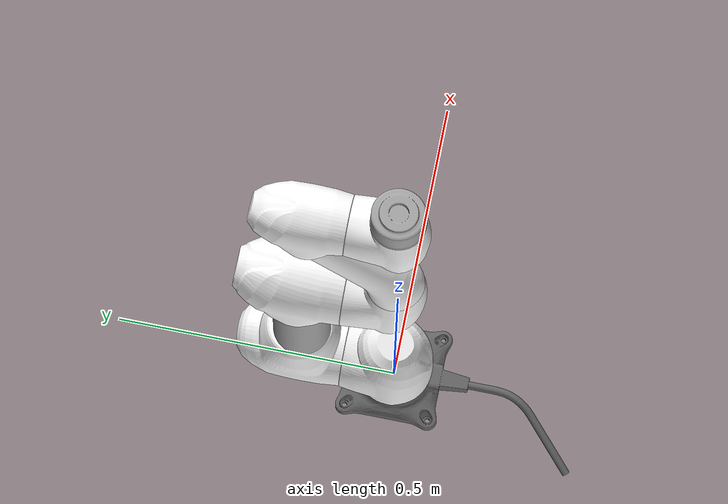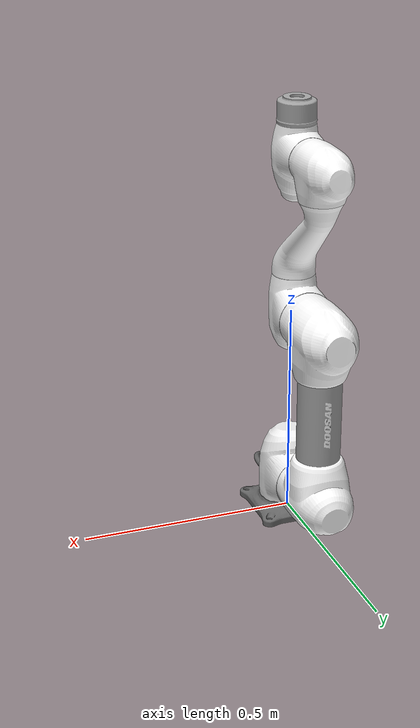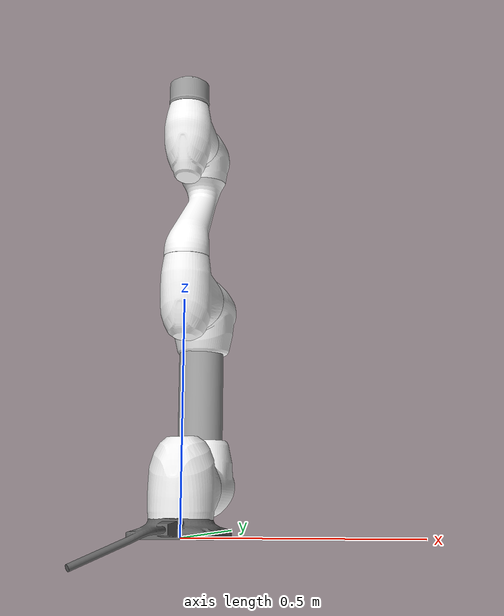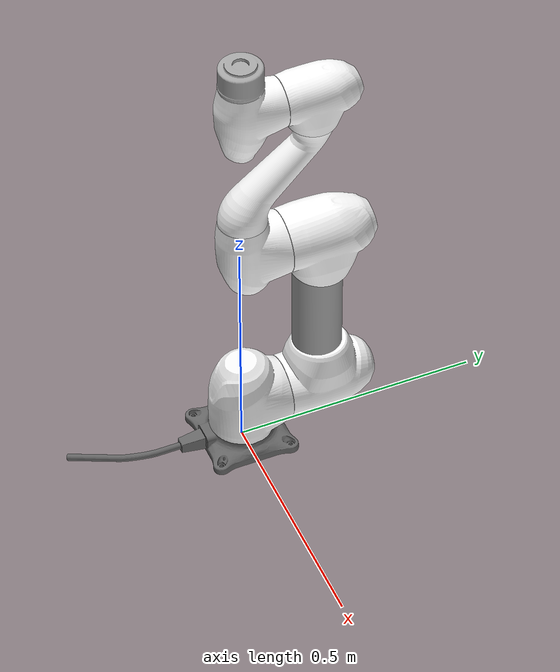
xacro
<?xml version="1.0"?>
<robot xmlns:xacro="http://www.ros.org/wiki/xacro" name="m0609" >

  <xacro:arg name="color"   default="white"/>
  <xacro:arg name="gripper" default="none"/>
  <xacro:arg name="namespace" default=""/>

  <xacro:property name="cr" value="$(arg color)"/>
  <xacro:property name="gr" value="$(arg gripper)"/>
  <xacro:if value="${cr == 'white'}">
     <xacro:include filename="$(find dsr_description2)/xacro/macro.m0609.white.xacro" />
  </xacro:if>
  <xacro:if value="${cr == 'blue'}">
     <xacro:include filename="$(find dsr_description2)/xacro/macro.m0609.blue.xacro" />
  </xacro:if>

  <xacro:m0609 namespace="$(arg namespace)"/>

  <link name="world" />

  <xacro:if value="${gr == 'robotiq_2f'}">
     <xacro:include filename="$(find dsr_description2)/xacro/robotiq_2f.urdf.xacro" />

  </xacro:if>

  <!-- World fixed joint-->
  <joint name="world_fixed" type="fixed">
    <origin xyz="0 0 0" rpy="0 0 0"/>
    <parent link="world"/>
    <child link="base_0"/>
  </joint>

</robot>

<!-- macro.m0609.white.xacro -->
<robot name="m0609" xmlns:xacro="http://www.ros.org/wiki/xacro">
	<xacro:include filename="$(find dsr_description2)/config/macro.gazebo.xacro" />
	<xacro:include filename="$(find dsr_description2)/config/macro.transmission.xacro" />
	<xacro:include filename="$(find dsr_description2)/config/macro.materials.xacro" />
	<xacro:macro name="m0609" params="namespace">
    <xacro:dsr_materials />
		<link name="base_0">
			<inertial>
				<mass value="3.722" />
				<origin xyz="-1.2e-05 -6e-05 0.050723" />
				<inertia ixx="0.011" ixy="-7.19e-06" ixz="-1.94e-06" iyy="0.011" iyz="4.9e-06" izz="0.014" />
			</inertial>
			<visual>
				<origin rpy="0 0 0" xyz="0 0 0" />
				<geometry>
					<mesh filename="package://dsr_description2/meshes/m0609_white/MF0609_0_0.dae" scale="0.001 0.001 0.001" />
				</geometry>
			</visual>
		</link>
		<!-- joint 1 -->
		<joint name="joint1" type="revolute">
			<parent link="base_0" />
			<child link="link1" />
			<origin rpy="0 0 0" xyz="0 0 0.1" />
			<axis xyz="0 0 1" />
			<limit effort="3460" lower="-6.283" upper="6.283" velocity="2.094" />
			<dynamics friction="0" />
		</joint>
		<link name="link1">
			<inertial>
				<mass value="7.446" />
				<origin xyz="7e-05 0.044281 0.143327" />
				<inertia ixx="0.039" ixy="2.1e-05" ixz="-3.61e-05" iyy="0.023" iyz="-0.003" izz="0.039" />
			</inertial>
            <collision>
                <geometry>
                    <cylinder radius="0.08" length="0.2"/>
                </geometry>
            </collision>
			<visual>
				<origin rpy="0 0 0" xyz="0 0 0" />
				<geometry>
					<mesh filename="package://dsr_description2/meshes/m0609_white/MF0609_1_0.dae" scale="0.001 0.001 0.001" />
				</geometry>
			</visual>
		</link>
		<!-- joint2 -->
		<joint name="joint2" type="revolute">
			<parent link="link1" />
			<child link="link2" />
			<origin rpy="0 -1.571 -1.571" xyz="0 0.0062 0" />
			<axis xyz="0 0 1" />
			<limit effort="3460" lower="-1.658" upper="1.658" velocity="2.094" />
			<dynamics friction="0" />
		</joint>
		<link name="link2">
			<inertial>
				<mass value="10.569" />
				<origin xyz="-1.6e-05 0.189372 0.418558" />
				<inertia ixx="0.820" ixy="1.19e-05" ixz="-0.000263" iyy="0.82" iyz="-0.008" izz="0.031" />
			</inertial>
            <collision>
                <origin rpy="0 -1.571 0" xyz="0.2 0 0.1525" />
                <geometry>
                    <cylinder radius="0.08" length="0.5"/>
                </geometry>
            </collision>
			<visual>
				<origin rpy="0 0 0" xyz="0 0 0" />
				<geometry>
					<mesh filename="package://dsr_description2/meshes/m0609_white/MF0609_2_0.dae" scale="0.001 0.001 0.001" />
				</geometry>
			</visual>
			<visual>
				<origin rpy="0 0 0" xyz="0 0 0" />
				<geometry>
					<mesh filename="package://dsr_description2/meshes/m0609_white/MF0609_2_1.dae" scale="0.001 0.001 0.001" />
				</geometry>
			</visual>
			<visual>
				<origin rpy="0 0 0" xyz="0 0 0" />
				<geometry>
					<mesh filename="package://dsr_description2/meshes/m0609_white/MF0609_2_2.dae" scale="0.001 0.001 0.001" />
				</geometry>
			</visual>
		</link>
		<!-- joint3 -->
		<joint name="joint3" type="revolute">
			<parent link="link2" />
			<child link="link3" />
			<origin rpy="0 0 1.571" xyz="0.411 0 0" />
			<axis xyz="0 0 1" />
			<limit effort="1630" lower="-2.356" upper="2.356" velocity="3.142" />
			<dynamics friction="0" />
		</joint>
		<link name="link3">
			<inertial>
				<mass value="3.614" />
				<origin xyz="6e-06 0.07917 0.781807" />
				<inertia ixx="0.012" ixy="-4.38e-06" ixz="-1.2e-06" iyy="0.008" iyz="0.002" izz="0.011" />
			</inertial>
			<visual>
				<origin rpy="0 0 0" xyz="0 0 0" />
				<geometry>
					<mesh filename="package://dsr_description2/meshes/m0609_white/MF0609_3_0.dae" scale="0.001 0.001 0.001" />
				</geometry>
			</visual>
		</link>
		<!-- joint4 -->
		<joint name="joint4" type="revolute">
			<parent link="link3" />
			<child link="link4" />
			<origin rpy="1.571 0 0" xyz="0 -0.368 0" />
			<axis xyz="0 0 1" />
			<limit effort="50" lower="-6.283" upper="6.283" velocity="3.927" />
			<dynamics friction="0" />
		</joint>
		<link name="link4">
			<inertial>
				<mass value="3.785" />
				<origin xyz="-2.1e-05 0.12337 1.148" />
				<inertia ixx="0.177" ixy="-2.34e-06" ixz="-4.92e-06" iyy="0.161" iyz="-0.05" izz="0.022" />
			</inertial>
            <collision>
                <origin rpy="-0.55 0 0" xyz="0 0.075 -0.16" />
                <geometry>
                    <cylinder radius="0.05" length="0.4"/>
                </geometry>
            </collision>
			<visual>
				<origin rpy="0 0 0" xyz="0 0 0" />
				<geometry>
					<mesh filename="package://dsr_description2/meshes/m0609_white/MF0609_4_0.dae" scale="0.001 0.001 0.001" />
				</geometry>
			</visual>
			<visual>
				<origin rpy="0 0 0" xyz="0 0 0" />
				<geometry>
					<mesh filename="package://dsr_description2/meshes/m0609_white/MF0609_4_1.dae" scale="0.001 0.001 0.001" />
				</geometry>
			</visual>
		</link>
		<!-- joint5 -->
		<joint name="joint5" type="revolute">
			<parent link="link4" />
			<child link="link5" />
			<origin rpy="-1.571 0 0" xyz="0 0 0" />
			<axis xyz="0 0 1" />
			<limit effort="50" lower="-2.356" upper="2.356" velocity="3.927" />
			<dynamics friction="0" />
		</joint>
		<link name="link5">
			<inertial>
				<mass value="2.598" />
				<origin xyz="-1.7e-05 0.06662 1.33103" />
				<inertia ixx="0.007" ixy="-4.93e-06" ixz="-5.57e-06" iyy="0.004" iyz="-6.64e-05" izz="0.007" />
			</inertial>
            <collision>
                <origin rpy="1.571 0 0" xyz="0 0 0" />
                <geometry>
                    <cylinder radius="0.06" length="0.15"/>
                </geometry>
            </collision>
			<visual>
				<origin rpy="0 0 0" xyz="0 0 0" />
				<geometry>
					<mesh filename="package://dsr_description2/meshes/m0609_white/MF0609_5_0.dae" scale="0.001 0.001 0.001" />
				</geometry>
			</visual>
		</link>
		<!-- joint6 -->
		<joint name="joint6" type="revolute">
			<parent link="link5" />
			<child link="link6" />
			<origin rpy="1.571 0 0" xyz="0 -0.121 0" />
			<axis xyz="0 0 1" />
			<limit effort="50" lower="-6.283" upper="6.283" velocity="3.927" />
			<dynamics friction="0" />
		</joint>
		<link name="link6">
			<inertial>
				<mass value="1.128" />
				<origin xyz="-0.000174 0.034708 1.40022" />
				<inertia ixx="0.001" ixy="-2.79e-06" ixz="5.78e-06" iyy="0.001" iyz="-6.67e-06" izz="0.001" />
			</inertial>
			<visual>
				<origin rpy="0 0 0" xyz="0 0 0" />
				<geometry>
					<mesh filename="package://dsr_description2/meshes/m0609_white/MF0609_6_0.dae" scale="0.001 0.001 0.001" />
				</geometry>
			</visual>
		</link>

    <xacro:dsr_transmission />
    <xacro:dsr_gazebo namespace="${namespace}" />

	</xacro:macro>
</robot>

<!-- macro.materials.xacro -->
<robot name="dsr_materials" xmlns:xacro="http://www.ros.org/wiki/xacro">
	<xacro:macro name="dsr_materials">
		<material name="black">
			<color rgba="0.0 0.0 0.0 1.0" />
		</material>
		<material name="white">
			<color rgba="1.0 1.0 1.0 1.0" />
		</material>
		<material name="orange">
			<color rgba="1.0 0.4 0.0 1.0" />
		</material>
		<material name="dr_gray">
			<color rgba="0.490 0.490 0.486 1.0" />
		</material>
		<material name="dr_white">
			<color rgba="0.941 0.941 0.941 1.0" />
		</material>
	</xacro:macro>
</robot>
